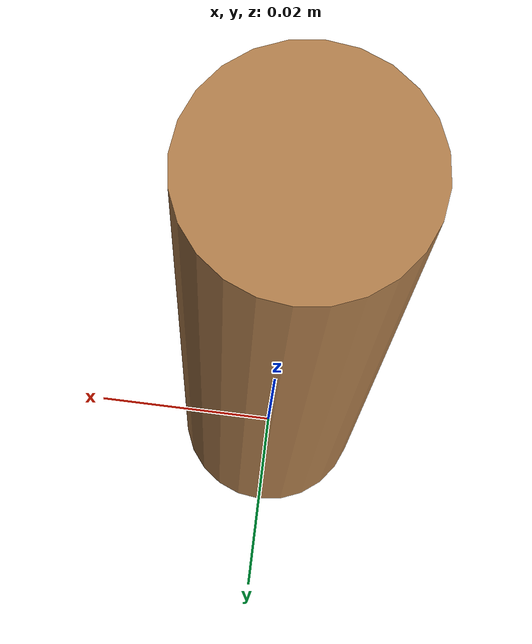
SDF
<?xml version='1.0'?>
<sdf version='1.7'>
  <model name='wooden_peg'>
    <link name='link'>
      <pose>0 0 0.04 0 -0 0</pose>
      <inertial>
        <mass>0.0175</mass>
        <inertia>
          <ixx>9.74923e-06</ixx>
          <ixy>0</ixy>
          <ixz>0</ixz>
          <iyy>9.74923e-06</iyy>
          <iyz>0</iyz>
          <izz>8.31797e-07</izz>
        </inertia>
        <pose>0 0 0 0 -0 0</pose>
      </inertial>
      <self_collide>0</self_collide>
      <enable_wind>0</enable_wind>
      <kinematic>0</kinematic>
      <visual name='visual'>
        <geometry>
          <cylinder>
            <radius>0.00975</radius>
            <length>0.08</length>
          </cylinder>
        </geometry>
        <material>
          <script>
            <uri>file://media/materials/scripts/gazebo.material</uri>
            <name>Gazebo/Wood</name>
          </script>
          <shader type='pixel'/>
        </material>
        <pose>0 0 0 0 -0 0</pose>
        <transparency>0</transparency>
        <cast_shadows>1</cast_shadows>
      </visual>
      <collision name='collision'>
        <laser_retro>0</laser_retro>
        <max_contacts>10</max_contacts>
        <pose>0 0 0 0 -0 0</pose>
        <geometry>
          <cylinder>
            <radius>0.00975</radius>
            <length>0.08</length>
          </cylinder>
        </geometry>
        <surface>
          <friction>
            <ode>
              <mu>1</mu>
              <mu2>1</mu2>
              <fdir1>0 0 0</fdir1>
              <slip1>0</slip1>
              <slip2>0</slip2>
            </ode>
            <torsional>
              <coefficient>1</coefficient>
              <patch_radius>0</patch_radius>
              <surface_radius>0.01</surface_radius>
              <use_patch_radius>0</use_patch_radius>
              <ode>
                <slip>0</slip>
              </ode>
            </torsional>
          </friction>
          <bounce>
            <restitution_coefficient>0</restitution_coefficient>
            <threshold>1e+06</threshold>
          </bounce>
          <contact>
            <collide_without_contact>0</collide_without_contact>
            <collide_without_contact_bitmask>1</collide_without_contact_bitmask>
            <collide_bitmask>1</collide_bitmask>
            <ode>
              <soft_cfm>0</soft_cfm>
              <soft_erp>0.2</soft_erp>
              <kp>100000</kp>
              <kd>100</kd>
              <max_vel>100</max_vel>
              <min_depth>0.001</min_depth>
            </ode>
            <bullet>
              <split_impulse>1</split_impulse>
              <split_impulse_penetration_threshold>-0.01</split_impulse_penetration_threshold>
              <soft_cfm>0</soft_cfm>
              <soft_erp>0.2</soft_erp>
              <kp>100000</kp>
              <kd>100</kd>
            </bullet>
          </contact>
        </surface>
      </collision>
    </link>
    <static>0</static>
    <allow_auto_disable>1</allow_auto_disable>
  </model>
</sdf>
